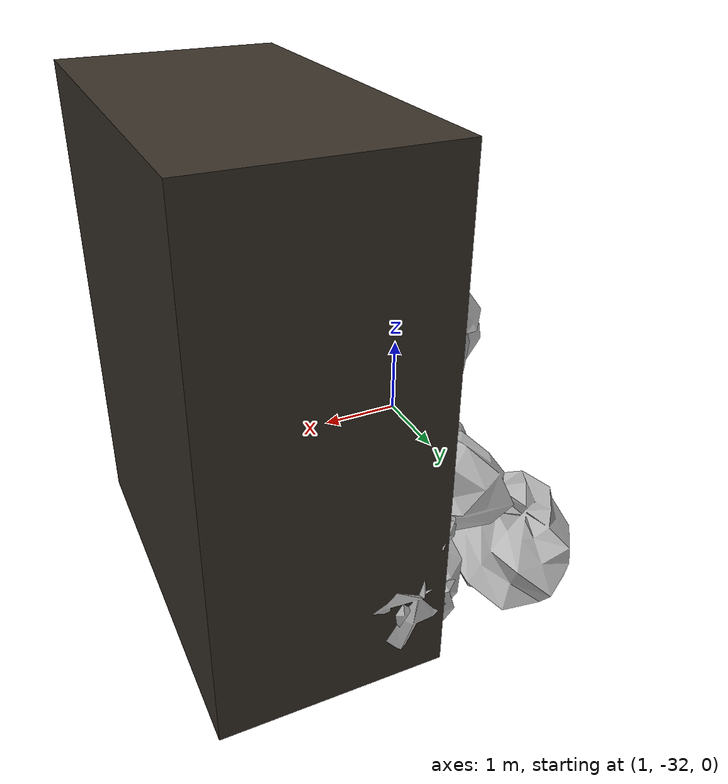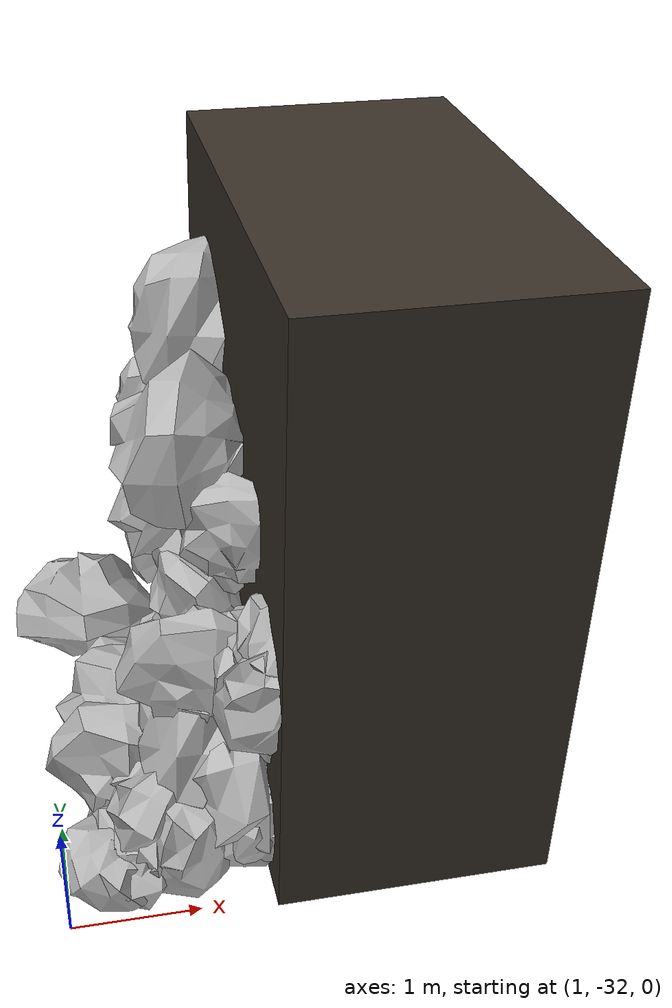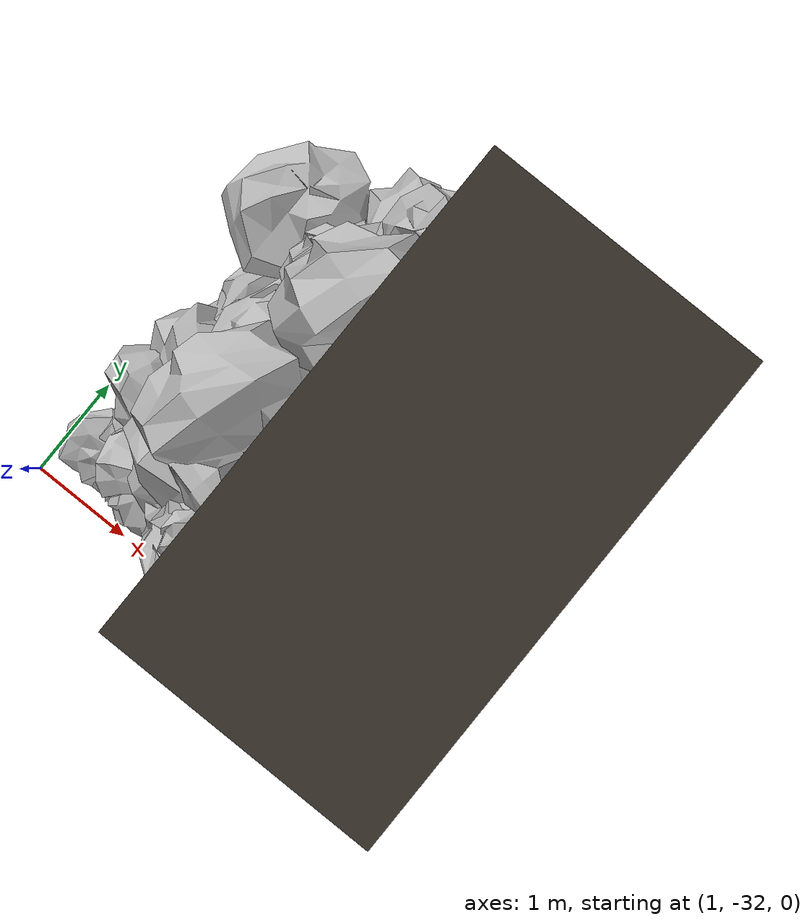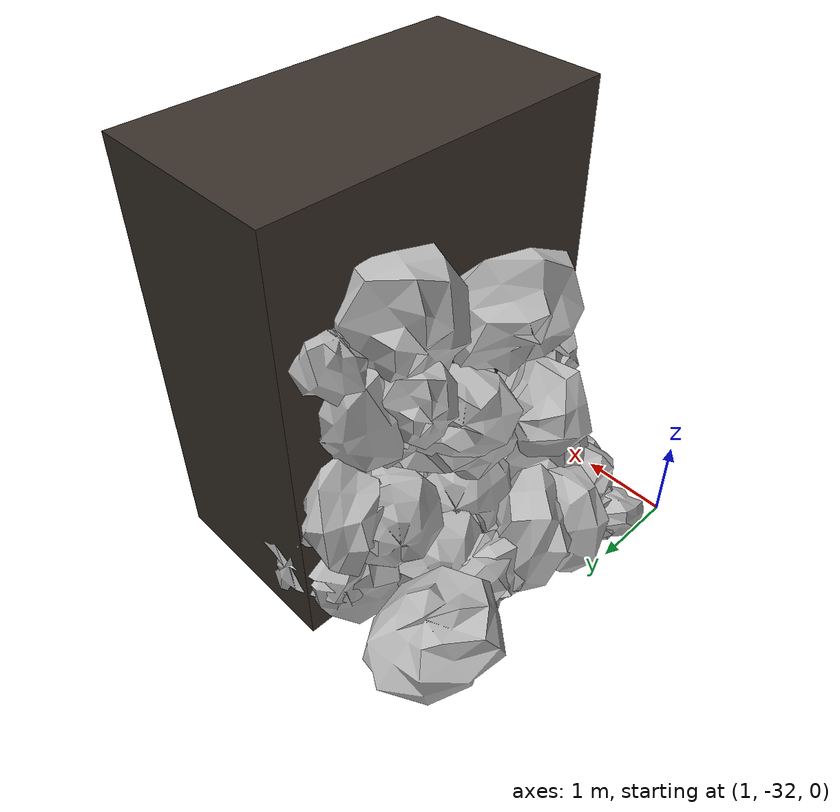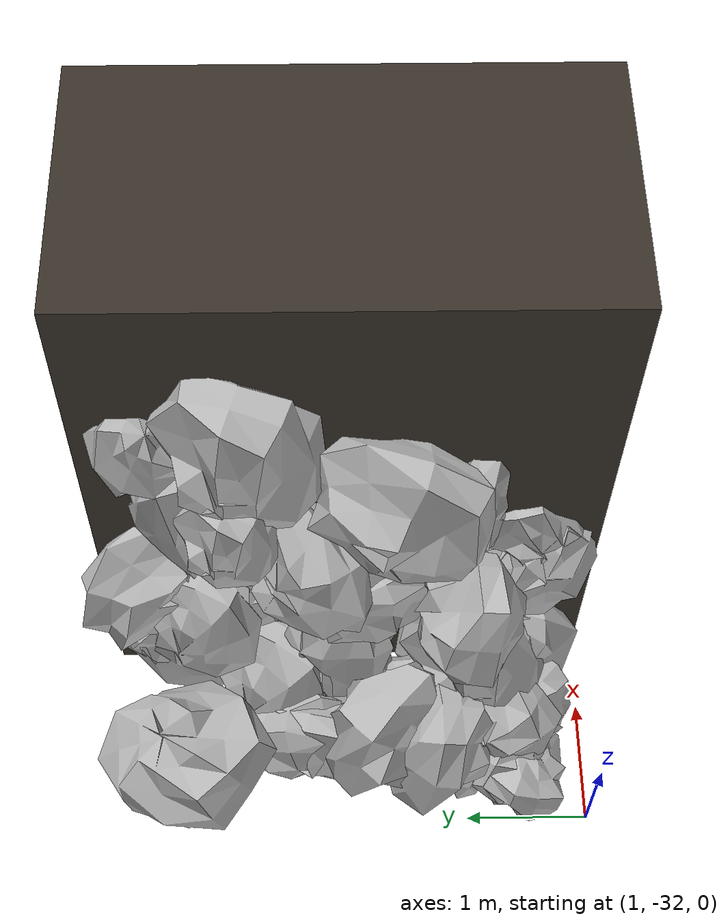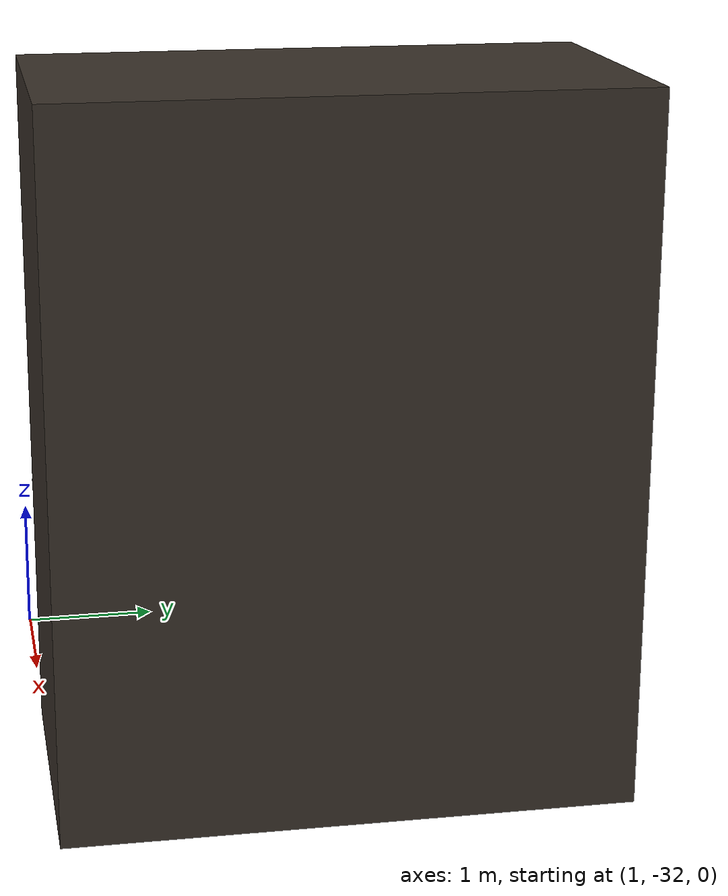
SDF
<sdf version="1.9">
 <world name="living_map">
  <model name="adit_d">
   <static>true</static>
   <link name="adit_plug">
    <pose>3.7 -30.0 2.4 0 0 0</pose>
    <collision name="c"><geometry><box><size>2.2 4.0 5.0</size></box></geometry></collision>
    <visual name="v">
     <geometry><box><size>2.2 4.0 5.0</size></box></geometry>
     <material>
      <ambient>0.22 0.19 0.16 1</ambient>
      <diffuse>0.22 0.19 0.16 1</diffuse>
      <specular>0.1 0.1 0.1 1</specular>
     </material>
     <cast_shadows>false</cast_shadows>
    </visual>
   </link>
   <link name="rubble">
    <visual name="r0">
     <pose>2.22 -28.83 1.41 0.02 1.51 2.69</pose>
     <geometry><mesh><uri>model://lm_rock/meshes/rock.obj</uri><scale>2.45 2.45 2.45</scale></mesh></geometry>
    </visual>
    <visual name="r1">
     <pose>2.65 -31.47 2.04 1.14 2.11 1.36</pose>
     <geometry><mesh><uri>model://lm_rock/meshes/rock.obj</uri><scale>1.91 1.91 1.91</scale></mesh></geometry>
    </visual>
    <visual name="r2">
     <pose>2.31 -31.24 0.65 1.52 2.77 1.77</pose>
     <geometry><mesh><uri>model://lm_rock/meshes/rock.obj</uri><scale>2.82 2.82 2.82</scale></mesh></geometry>
    </visual>
    <visual name="r3">
     <pose>2.77 -31.27 1.44 0.87 2.02 2.18</pose>
     <geometry><mesh><uri>model://lm_rock/meshes/rock.obj</uri><scale>2.88 2.88 2.88</scale></mesh></geometry>
    </visual>
    <visual name="r4">
     <pose>2.34 -30.93 0.41 0.84 2.43 0.60</pose>
     <geometry><mesh><uri>model://lm_rock/meshes/rock.obj</uri><scale>2.39 2.39 2.39</scale></mesh></geometry>
    </visual>
    <visual name="r5">
     <pose>2.15 -30.39 3.18 1.48 0.07 1.27</pose>
     <geometry><mesh><uri>model://lm_rock/meshes/rock.obj</uri><scale>3.04 3.04 3.04</scale></mesh></geometry>
    </visual>
    <visual name="r6">
     <pose>2.64 -31.21 0.49 1.74 2.69 0.61</pose>
     <geometry><mesh><uri>model://lm_rock/meshes/rock.obj</uri><scale>3.07 3.07 3.07</scale></mesh></geometry>
    </visual>
    <visual name="r7">
     <pose>2.59 -31.54 0.39 0.25 1.49 2.76</pose>
     <geometry><mesh><uri>model://lm_rock/meshes/rock.obj</uri><scale>1.81 1.81 1.81</scale></mesh></geometry>
    </visual>
    <visual name="r8">
     <pose>2.67 -31.30 1.49 1.74 0.52 1.83</pose>
     <geometry><mesh><uri>model://lm_rock/meshes/rock.obj</uri><scale>2.39 2.39 2.39</scale></mesh></geometry>
    </visual>
    <visual name="r9">
     <pose>2.60 -29.66 0.29 0.45 0.80 2.98</pose>
     <geometry><mesh><uri>model://lm_rock/meshes/rock.obj</uri><scale>3.14 3.14 3.14</scale></mesh></geometry>
    </visual>
    <visual name="r10">
     <pose>2.73 -28.56 0.52 0.71 1.83 0.13</pose>
     <geometry><mesh><uri>model://lm_rock/meshes/rock.obj</uri><scale>3.20 3.20 3.20</scale></mesh></geometry>
    </visual>
    <visual name="r11">
     <pose>2.63 -29.12 2.46 0.26 1.04 2.59</pose>
     <geometry><mesh><uri>model://lm_rock/meshes/rock.obj</uri><scale>2.31 2.31 2.31</scale></mesh></geometry>
    </visual>
    <visual name="r12">
     <pose>2.46 -28.44 1.68 1.72 0.06 2.40</pose>
     <geometry><mesh><uri>model://lm_rock/meshes/rock.obj</uri><scale>2.62 2.62 2.62</scale></mesh></geometry>
    </visual>
    <visual name="r13">
     <pose>2.29 -30.18 1.62 0.97 0.27 1.89</pose>
     <geometry><mesh><uri>model://lm_rock/meshes/rock.obj</uri><scale>2.26 2.26 2.26</scale></mesh></geometry>
    </visual>
    <visual name="r14">
     <pose>2.12 -29.10 2.84 2.42 1.49 2.13</pose>
     <geometry><mesh><uri>model://lm_rock/meshes/rock.obj</uri><scale>1.94 1.94 1.94</scale></mesh></geometry>
    </visual>
    <visual name="r15">
     <pose>2.48 -30.86 2.68 2.89 1.20 1.12</pose>
     <geometry><mesh><uri>model://lm_rock/meshes/rock.obj</uri><scale>2.15 2.15 2.15</scale></mesh></geometry>
    </visual>
    <visual name="r16">
     <pose>2.70 -31.05 1.39 2.53 0.78 0.15</pose>
     <geometry><mesh><uri>model://lm_rock/meshes/rock.obj</uri><scale>3.00 3.00 3.00</scale></mesh></geometry>
    </visual>
    <visual name="r17">
     <pose>2.95 -28.44 0.70 1.82 0.04 0.18</pose>
     <geometry><mesh><uri>model://lm_rock/meshes/rock.obj</uri><scale>3.17 3.17 3.17</scale></mesh></geometry>
    </visual>
    <visual name="r18">
     <pose>2.65 -28.51 1.46 1.06 0.42 1.69</pose>
     <geometry><mesh><uri>model://lm_rock/meshes/rock.obj</uri><scale>2.09 2.09 2.09</scale></mesh></geometry>
    </visual>
    <visual name="r19">
     <pose>2.60 -29.37 0.40 0.20 1.35 2.11</pose>
     <geometry><mesh><uri>model://lm_rock/meshes/rock.obj</uri><scale>1.99 1.99 1.99</scale></mesh></geometry>
    </visual>
    <visual name="r20">
     <pose>2.90 -31.06 1.44 2.15 2.32 2.64</pose>
     <geometry><mesh><uri>model://lm_rock/meshes/rock.obj</uri><scale>2.87 2.87 2.87</scale></mesh></geometry>
    </visual>
    <visual name="r21">
     <pose>2.14 -29.91 0.45 0.52 1.89 0.25</pose>
     <geometry><mesh><uri>model://lm_rock/meshes/rock.obj</uri><scale>2.49 2.49 2.49</scale></mesh></geometry>
    </visual>
    <visual name="r22">
     <pose>2.11 -31.04 0.88 1.37 1.68 1.16</pose>
     <geometry><mesh><uri>model://lm_rock/meshes/rock.obj</uri><scale>2.89 2.89 2.89</scale></mesh></geometry>
    </visual>
    <visual name="r23">
     <pose>2.95 -29.89 1.79 2.82 0.09 2.98</pose>
     <geometry><mesh><uri>model://lm_rock/meshes/rock.obj</uri><scale>2.04 2.04 2.04</scale></mesh></geometry>
    </visual>
    <visual name="r24">
     <pose>2.57 -29.88 2.01 2.73 0.20 1.93</pose>
     <geometry><mesh><uri>model://lm_rock/meshes/rock.obj</uri><scale>3.04 3.04 3.04</scale></mesh></geometry>
    </visual>
    <visual name="r25">
     <pose>2.75 -29.29 1.15 0.31 2.10 1.36</pose>
     <geometry><mesh><uri>model://lm_rock/meshes/rock.obj</uri><scale>2.56 2.56 2.56</scale></mesh></geometry>
    </visual>
    <visual name="r26">
     <pose>2.15 -29.67 2.33 1.12 2.64 0.69</pose>
     <geometry><mesh><uri>model://lm_rock/meshes/rock.obj</uri><scale>2.49 2.49 2.49</scale></mesh></geometry>
    </visual>
    <visual name="r27">
     <pose>2.66 -28.80 2.65 0.11 1.79 1.84</pose>
     <geometry><mesh><uri>model://lm_rock/meshes/rock.obj</uri><scale>2.95 2.95 2.95</scale></mesh></geometry>
    </visual>
    <visual name="r28">
     <pose>2.16 -30.99 1.52 1.82 0.54 0.19</pose>
     <geometry><mesh><uri>model://lm_rock/meshes/rock.obj</uri><scale>2.75 2.75 2.75</scale></mesh></geometry>
    </visual>
    <visual name="r29">
     <pose>2.58 -31.52 1.75 2.33 1.00 2.35</pose>
     <geometry><mesh><uri>model://lm_rock/meshes/rock.obj</uri><scale>2.30 2.30 2.30</scale></mesh></geometry>
    </visual>
    <visual name="r30">
     <pose>2.63 -28.48 3.44 2.96 2.50 0.32</pose>
     <geometry><mesh><uri>model://lm_rock/meshes/rock.obj</uri><scale>1.81 1.81 1.81</scale></mesh></geometry>
    </visual>
    <visual name="r31">
     <pose>2.80 -30.99 0.91 0.66 0.33 0.36</pose>
     <geometry><mesh><uri>model://lm_rock/meshes/rock.obj</uri><scale>2.29 2.29 2.29</scale></mesh></geometry>
    </visual>
    <visual name="r32">
     <pose>2.44 -29.23 3.52 1.40 1.57 1.11</pose>
     <geometry><mesh><uri>model://lm_rock/meshes/rock.obj</uri><scale>3.11 3.11 3.11</scale></mesh></geometry>
    </visual>
    <visual name="r33">
     <pose>2.33 -29.94 0.93 0.59 1.32 2.83</pose>
     <geometry><mesh><uri>model://lm_rock/meshes/rock.obj</uri><scale>2.69 2.69 2.69</scale></mesh></geometry>
    </visual>
    <visual name="r34">
     <pose>1.48 -31.42 0.10 0.75 2.55 1.82</pose>
     <geometry><mesh><uri>model://lm_rock/meshes/rock.obj</uri><scale>1.83 1.83 1.83</scale></mesh></geometry>
    </visual>
    <visual name="r35">
     <pose>1.95 -30.64 0.08 2.40 2.93 2.36</pose>
     <geometry><mesh><uri>model://lm_rock/meshes/rock.obj</uri><scale>2.11 2.11 2.11</scale></mesh></geometry>
    </visual>
    <visual name="r36">
     <pose>1.41 -28.66 0.47 2.90 0.28 0.95</pose>
     <geometry><mesh><uri>model://lm_rock/meshes/rock.obj</uri><scale>3.06 3.06 3.06</scale></mesh></geometry>
    </visual>
    <visual name="r37">
     <pose>1.76 -30.49 0.32 2.51 1.20 0.63</pose>
     <geometry><mesh><uri>model://lm_rock/meshes/rock.obj</uri><scale>2.15 2.15 2.15</scale></mesh></geometry>
    </visual>
    <visual name="r38">
     <pose>1.65 -29.78 0.26 1.32 0.56 1.21</pose>
     <geometry><mesh><uri>model://lm_rock/meshes/rock.obj</uri><scale>2.19 2.19 2.19</scale></mesh></geometry>
    </visual>
    <visual name="r39">
     <pose>1.71 -31.00 0.13 2.13 1.98 0.41</pose>
     <geometry><mesh><uri>model://lm_rock/meshes/rock.obj</uri><scale>2.26 2.26 2.26</scale></mesh></geometry>
    </visual>
    <visual name="r40">
     <pose>1.80 -29.66 0.20 2.28 2.65 2.20</pose>
     <geometry><mesh><uri>model://lm_rock/meshes/rock.obj</uri><scale>2.68 2.68 2.68</scale></mesh></geometry>
    </visual>
    <visual name="r41">
     <pose>1.90 -31.54 0.29 1.66 1.41 2.60</pose>
     <geometry><mesh><uri>model://lm_rock/meshes/rock.obj</uri><scale>2.10 2.10 2.10</scale></mesh></geometry>
    </visual>
    <visual name="r42">
     <pose>1.74 -31.28 0.43 2.15 0.85 1.60</pose>
     <geometry><mesh><uri>model://lm_rock/meshes/rock.obj</uri><scale>2.25 2.25 2.25</scale></mesh></geometry>
    </visual>
    <visual name="r43">
     <pose>1.37 -31.47 0.05 0.45 0.49 0.29</pose>
     <geometry><mesh><uri>model://lm_rock/meshes/rock.obj</uri><scale>1.90 1.90 1.90</scale></mesh></geometry>
    </visual>
    <visual name="r44">
     <pose>1.62 -30.33 0.50 2.67 1.52 0.40</pose>
     <geometry><mesh><uri>model://lm_rock/meshes/rock.obj</uri><scale>2.95 2.95 2.95</scale></mesh></geometry>
    </visual>
    <visual name="r45">
     <pose>1.96 -30.57 0.21 1.16 0.55 1.84</pose>
     <geometry><mesh><uri>model://lm_rock/meshes/rock.obj</uri><scale>2.77 2.77 2.77</scale></mesh></geometry>
    </visual>
    <visual name="r46">
     <pose>2.19 -29.41 0.31 0.06 1.44 2.60</pose>
     <geometry><mesh><uri>model://lm_rock/meshes/rock.obj</uri><scale>3.02 3.02 3.02</scale></mesh></geometry>
    </visual>
    <visual name="r47">
     <pose>1.52 -30.73 0.46 0.43 1.35 2.04</pose>
     <geometry><mesh><uri>model://lm_rock/meshes/rock.obj</uri><scale>2.75 2.75 2.75</scale></mesh></geometry>
    </visual>
    <collision name="c">
     <pose>2.5 -30.0 1.6 0 0 0</pose>
     <geometry><box><size>1.0 3.6 3.2</size></box></geometry>
    </collision>
   </link>
  </model>
 </world>
</sdf>
